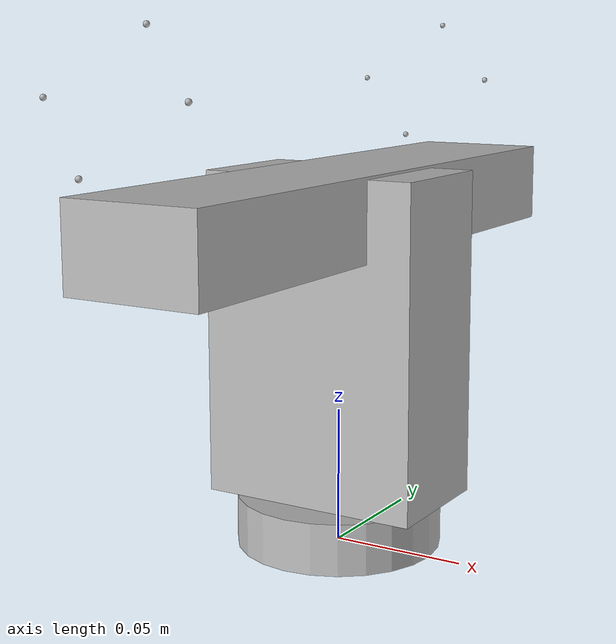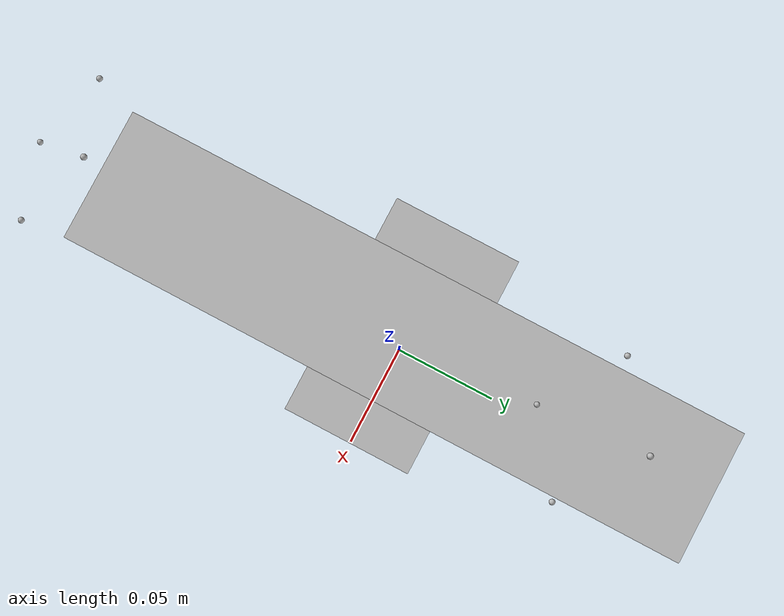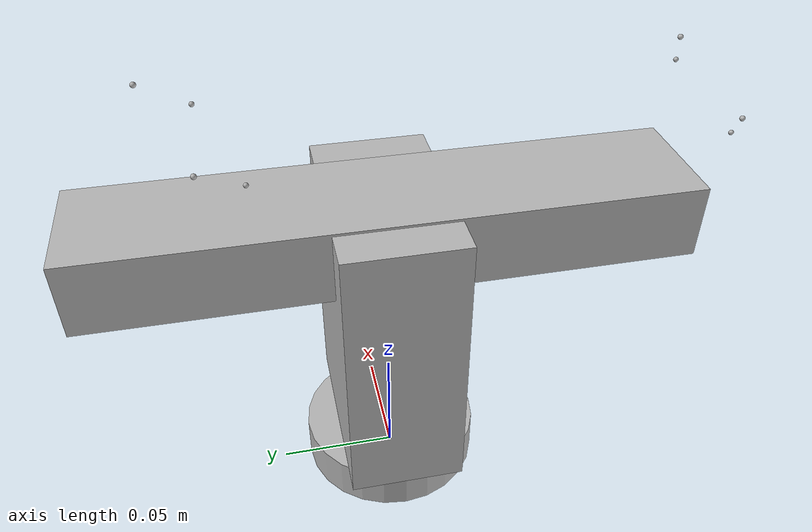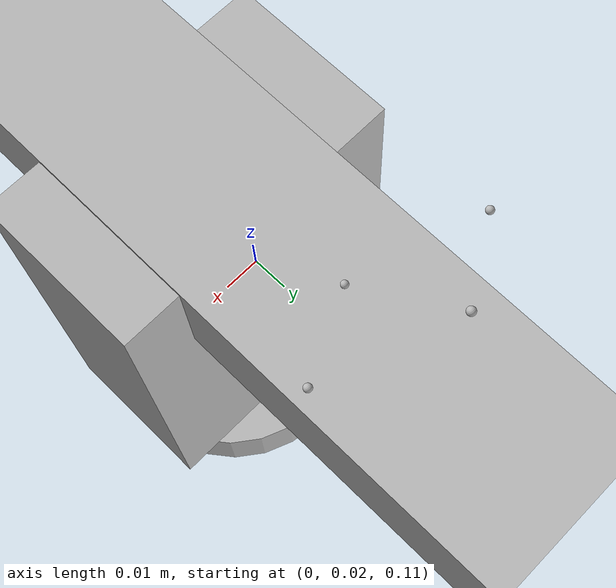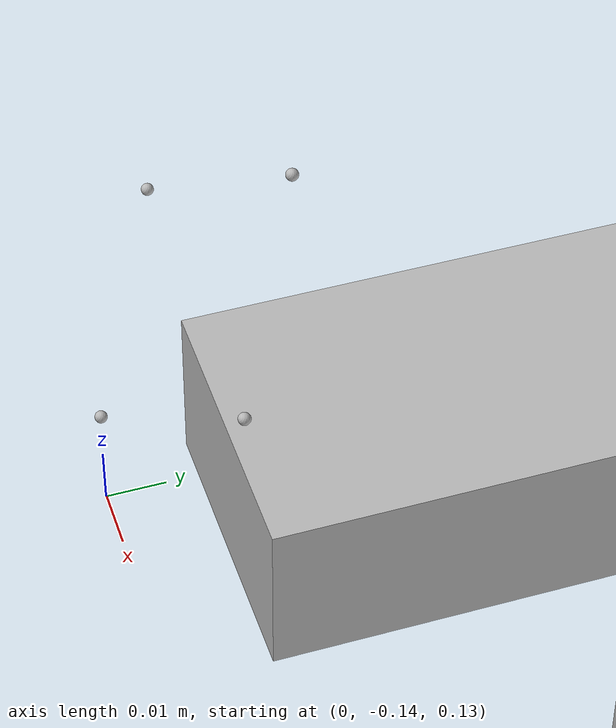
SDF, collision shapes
<?xml version='1.0' encoding='utf-8'?>
<sdf version="1.9" xmlns:drake="http://drake.mit.edu">
  <model name="robotiq_epick_2cup_model">
    <link name="robotiq_epick_2cup_base_link">
      <inertial>
        <pose>0 0 0.081 0 -0 0</pose>
        <mass>1.12</mass>
        <inertia>
          <ixx>0.003084</ixx>
          <ixy>0</ixy>
          <ixz>0</ixz>
          <iyy>0.002999</iyy>
          <iyz>0</iyz>
          <izz>0.000546</izz>
        </inertia>
      </inertial>
      <collision name="robotiq_epick_2cup_base_collision">
        <pose>0 0 0.0095 0 0 0</pose>
        <geometry>
          <cylinder>
            <radius>0.038</radius>
            <length>0.019</length>
          </cylinder>
        </geometry>
      </collision>
      <collision name="robotiq_epick_2cup_body_collision">
        <pose>0 0 0.079 0 0 0</pose>
        <geometry>
          <box>
            <size>0.083 0.048 0.12</size>
          </box>
        </geometry>
      </collision>
      <collision name="robotiq_epick_2cup_bracket_collision">
        <pose>0 0 0.125 0 0 0</pose>
        <geometry>
          <box>
            <size>0.05 0.24 0.03</size>
          </box>
        </geometry>
      </collision>
      <visual name="robotiq_epick_2cup_visual">
        <pose degrees="True">0 0 0.101 -90 0 90</pose>
        <geometry>
          <mesh>
            <scale>1 1 1</scale>
            <uri>../meshes/visual/robotiq_epick_2cup.obj</uri>
          </mesh>
        </geometry>
      </visual>
    </link>
    <frame name="suction_cup_0" attached_to="robotiq_epick_2cup_base_link">
      <pose degrees="True">0 0.0955 0.14783 180 0 0</pose>
    </frame>
    <frame name="suction_cup_1" attached_to="robotiq_epick_2cup_base_link">
      <pose degrees="True">0 -0.0955 0.14783 180 0 0</pose>
    </frame>
    <!--**BELOW AUTOGENERATED** by gen_suction_cup_spring_model.py-->
    <!--modifying by hand not recommended.-->
    <link name="cup_0_link">
      <pose relative_to="suction_cup_0">0 0 -0.01 0 0 0</pose>
      <inertial>
        <mass>0.01</mass>
        <inertia>
          <ixx>4e-06</ixx>
          <ixy>0</ixy>
          <ixz>0</ixz>
          <iyy>4e-06</iyy>
          <iyz>0</iyz>
          <izz>3.5e-06</izz>
        </inertia>
      </inertial>
    </link>
    <joint name="base_to_cup_0_body_joint" type="prismatic">
      <parent>suction_cup_0</parent>
      <child>cup_0_link</child>
      <axis>
        <xyz>0 0 1</xyz>
        <limit>
          <effort>0</effort>
          <lower>0</lower>
          <upper>0.005</upper>
        </limit>
        <dynamics>
          <spring_reference>0</spring_reference>
          <spring_stiffness>700</spring_stiffness>
          <damping>1.0</damping>
        </dynamics>
      </axis>
    </joint>
    <link name="cup_0_edge_pt_0_body">
      <pose relative_to="suction_cup_0">0 0 0 0 0 0</pose>
      <inertial>
        <mass>0.0025</mass>
        <inertia>
          <ixx>1e-06</ixx>
          <ixy>0</ixy>
          <ixz>0</ixz>
          <iyy>1e-06</iyy>
          <iyz>0</iyz>
          <izz>8.75e-07</izz>
        </inertia>
      </inertial>
      <collision name="cup_0_edge_pt_0_collision">
        <pose>0.026 0.0 -0.036 0 0 0</pose>
        <geometry>
          <sphere>
            <radius>0.001</radius>
          </sphere>
        </geometry>
        <drake:proximity_properties>
          <drake:mu_dynamic>0.6</drake:mu_dynamic>
          <drake:mu_static>0.6</drake:mu_static>
        </drake:proximity_properties>
      </collision>
    </link>
    <joint name="cup_0_body_to_edge_pt_0_joint" type="prismatic">
      <parent>cup_0_link</parent>
      <child>cup_0_edge_pt_0_body</child>
      <axis>
        <xyz>0 0 1</xyz>
        <limit>
          <effort>0</effort>
          <lower>0</lower>
          <upper>0.005</upper>
        </limit>
        <dynamics>
          <spring_reference>0</spring_reference>
          <spring_stiffness>175.0</spring_stiffness>
          <damping>0.25</damping>
        </dynamics>
      </axis>
    </joint>
    <link name="cup_0_edge_pt_1_body">
      <pose relative_to="suction_cup_0">0 0 0 0 0 0</pose>
      <inertial>
        <mass>0.0025</mass>
        <inertia>
          <ixx>1e-06</ixx>
          <ixy>0</ixy>
          <ixz>0</ixz>
          <iyy>1e-06</iyy>
          <iyz>0</iyz>
          <izz>8.75e-07</izz>
        </inertia>
      </inertial>
      <collision name="cup_0_edge_pt_1_collision">
        <pose>1.5920408388915591e-18 0.026 -0.036 0 0 0</pose>
        <geometry>
          <sphere>
            <radius>0.001</radius>
          </sphere>
        </geometry>
        <drake:proximity_properties>
          <drake:mu_dynamic>0.6</drake:mu_dynamic>
          <drake:mu_static>0.6</drake:mu_static>
        </drake:proximity_properties>
      </collision>
    </link>
    <joint name="cup_0_body_to_edge_pt_1_joint" type="prismatic">
      <parent>cup_0_link</parent>
      <child>cup_0_edge_pt_1_body</child>
      <axis>
        <xyz>0 0 1</xyz>
        <limit>
          <effort>0</effort>
          <lower>0</lower>
          <upper>0.005</upper>
        </limit>
        <dynamics>
          <spring_reference>0</spring_reference>
          <spring_stiffness>175.0</spring_stiffness>
          <damping>0.25</damping>
        </dynamics>
      </axis>
    </joint>
    <link name="cup_0_edge_pt_2_body">
      <pose relative_to="suction_cup_0">0 0 0 0 0 0</pose>
      <inertial>
        <mass>0.0025</mass>
        <inertia>
          <ixx>1e-06</ixx>
          <ixy>0</ixy>
          <ixz>0</ixz>
          <iyy>1e-06</iyy>
          <iyz>0</iyz>
          <izz>8.75e-07</izz>
        </inertia>
      </inertial>
      <collision name="cup_0_edge_pt_2_collision">
        <pose>-0.026 3.1840816777831182e-18 -0.036 0 0 0</pose>
        <geometry>
          <sphere>
            <radius>0.001</radius>
          </sphere>
        </geometry>
        <drake:proximity_properties>
          <drake:mu_dynamic>0.6</drake:mu_dynamic>
          <drake:mu_static>0.6</drake:mu_static>
        </drake:proximity_properties>
      </collision>
    </link>
    <joint name="cup_0_body_to_edge_pt_2_joint" type="prismatic">
      <parent>cup_0_link</parent>
      <child>cup_0_edge_pt_2_body</child>
      <axis>
        <xyz>0 0 1</xyz>
        <limit>
          <effort>0</effort>
          <lower>0</lower>
          <upper>0.005</upper>
        </limit>
        <dynamics>
          <spring_reference>0</spring_reference>
          <spring_stiffness>175.0</spring_stiffness>
          <damping>0.25</damping>
        </dynamics>
      </axis>
    </joint>
    <link name="cup_0_edge_pt_3_body">
      <pose relative_to="suction_cup_0">0 0 0 0 0 0</pose>
      <inertial>
        <mass>0.0025</mass>
        <inertia>
          <ixx>1e-06</ixx>
          <ixy>0</ixy>
          <ixz>0</ixz>
          <iyy>1e-06</iyy>
          <iyz>0</iyz>
          <izz>8.75e-07</izz>
        </inertia>
      </inertial>
      <collision name="cup_0_edge_pt_3_collision">
        <pose>-4.776122516674677e-18 -0.026 -0.036 0 0 0</pose>
        <geometry>
          <sphere>
            <radius>0.001</radius>
          </sphere>
        </geometry>
        <drake:proximity_properties>
          <drake:mu_dynamic>0.6</drake:mu_dynamic>
          <drake:mu_static>0.6</drake:mu_static>
        </drake:proximity_properties>
      </collision>
    </link>
    <joint name="cup_0_body_to_edge_pt_3_joint" type="prismatic">
      <parent>cup_0_link</parent>
      <child>cup_0_edge_pt_3_body</child>
      <axis>
        <xyz>0 0 1</xyz>
        <limit>
          <effort>0</effort>
          <lower>0</lower>
          <upper>0.005</upper>
        </limit>
        <dynamics>
          <spring_reference>0</spring_reference>
          <spring_stiffness>175.0</spring_stiffness>
          <damping>0.25</damping>
        </dynamics>
      </axis>
    </joint>
    <link name="cup_1_link">
      <pose relative_to="suction_cup_1">0 0 -0.01 0 0 0</pose>
      <inertial>
        <mass>0.01</mass>
        <inertia>
          <ixx>4e-06</ixx>
          <ixy>0</ixy>
          <ixz>0</ixz>
          <iyy>4e-06</iyy>
          <iyz>0</iyz>
          <izz>3.5e-06</izz>
        </inertia>
      </inertial>
    </link>
    <joint name="base_to_cup_1_body_joint" type="prismatic">
      <parent>suction_cup_1</parent>
      <child>cup_1_link</child>
      <axis>
        <xyz>0 0 1</xyz>
        <limit>
          <effort>0</effort>
          <lower>0</lower>
          <upper>0.005</upper>
        </limit>
        <dynamics>
          <spring_reference>0</spring_reference>
          <spring_stiffness>700</spring_stiffness>
          <damping>1.0</damping>
        </dynamics>
      </axis>
    </joint>
    <link name="cup_1_edge_pt_0_body">
      <pose relative_to="suction_cup_1">0 0 0 0 0 0</pose>
      <inertial>
        <mass>0.0025</mass>
        <inertia>
          <ixx>1e-06</ixx>
          <ixy>0</ixy>
          <ixz>0</ixz>
          <iyy>1e-06</iyy>
          <iyz>0</iyz>
          <izz>8.75e-07</izz>
        </inertia>
      </inertial>
      <collision name="cup_1_edge_pt_0_collision">
        <pose>0.026 0.0 -0.036 0 0 0</pose>
        <geometry>
          <sphere>
            <radius>0.001</radius>
          </sphere>
        </geometry>
        <drake:proximity_properties>
          <drake:mu_dynamic>0.6</drake:mu_dynamic>
          <drake:mu_static>0.6</drake:mu_static>
        </drake:proximity_properties>
      </collision>
    </link>
    <joint name="cup_1_body_to_edge_pt_0_joint" type="prismatic">
      <parent>cup_1_link</parent>
      <child>cup_1_edge_pt_0_body</child>
      <axis>
        <xyz>0 0 1</xyz>
        <limit>
          <effort>0</effort>
          <lower>0</lower>
          <upper>0.005</upper>
        </limit>
        <dynamics>
          <spring_reference>0</spring_reference>
          <spring_stiffness>175.0</spring_stiffness>
          <damping>0.25</damping>
        </dynamics>
      </axis>
    </joint>
    <link name="cup_1_edge_pt_1_body">
      <pose relative_to="suction_cup_1">0 0 0 0 0 0</pose>
      <inertial>
        <mass>0.0025</mass>
        <inertia>
          <ixx>1e-06</ixx>
          <ixy>0</ixy>
          <ixz>0</ixz>
          <iyy>1e-06</iyy>
          <iyz>0</iyz>
          <izz>8.75e-07</izz>
        </inertia>
      </inertial>
      <collision name="cup_1_edge_pt_1_collision">
        <pose>1.5920408388915591e-18 0.026 -0.036 0 0 0</pose>
        <geometry>
          <sphere>
            <radius>0.001</radius>
          </sphere>
        </geometry>
        <drake:proximity_properties>
          <drake:mu_dynamic>0.6</drake:mu_dynamic>
          <drake:mu_static>0.6</drake:mu_static>
        </drake:proximity_properties>
      </collision>
    </link>
    <joint name="cup_1_body_to_edge_pt_1_joint" type="prismatic">
      <parent>cup_1_link</parent>
      <child>cup_1_edge_pt_1_body</child>
      <axis>
        <xyz>0 0 1</xyz>
        <limit>
          <effort>0</effort>
          <lower>0</lower>
          <upper>0.005</upper>
        </limit>
        <dynamics>
          <spring_reference>0</spring_reference>
          <spring_stiffness>175.0</spring_stiffness>
          <damping>0.25</damping>
        </dynamics>
      </axis>
    </joint>
    <link name="cup_1_edge_pt_2_body">
      <pose relative_to="suction_cup_1">0 0 0 0 0 0</pose>
      <inertial>
        <mass>0.0025</mass>
        <inertia>
          <ixx>1e-06</ixx>
          <ixy>0</ixy>
          <ixz>0</ixz>
          <iyy>1e-06</iyy>
          <iyz>0</iyz>
          <izz>8.75e-07</izz>
        </inertia>
      </inertial>
      <collision name="cup_1_edge_pt_2_collision">
        <pose>-0.026 3.1840816777831182e-18 -0.036 0 0 0</pose>
        <geometry>
          <sphere>
            <radius>0.001</radius>
          </sphere>
        </geometry>
        <drake:proximity_properties>
          <drake:mu_dynamic>0.6</drake:mu_dynamic>
          <drake:mu_static>0.6</drake:mu_static>
        </drake:proximity_properties>
      </collision>
    </link>
    <joint name="cup_1_body_to_edge_pt_2_joint" type="prismatic">
      <parent>cup_1_link</parent>
      <child>cup_1_edge_pt_2_body</child>
      <axis>
        <xyz>0 0 1</xyz>
        <limit>
          <effort>0</effort>
          <lower>0</lower>
          <upper>0.005</upper>
        </limit>
        <dynamics>
          <spring_reference>0</spring_reference>
          <spring_stiffness>175.0</spring_stiffness>
          <damping>0.25</damping>
        </dynamics>
      </axis>
    </joint>
    <link name="cup_1_edge_pt_3_body">
      <pose relative_to="suction_cup_1">0 0 0 0 0 0</pose>
      <inertial>
        <mass>0.0025</mass>
        <inertia>
          <ixx>1e-06</ixx>
          <ixy>0</ixy>
          <ixz>0</ixz>
          <iyy>1e-06</iyy>
          <iyz>0</iyz>
          <izz>8.75e-07</izz>
        </inertia>
      </inertial>
      <collision name="cup_1_edge_pt_3_collision">
        <pose>-4.776122516674677e-18 -0.026 -0.036 0 0 0</pose>
        <geometry>
          <sphere>
            <radius>0.001</radius>
          </sphere>
        </geometry>
        <drake:proximity_properties>
          <drake:mu_dynamic>0.6</drake:mu_dynamic>
          <drake:mu_static>0.6</drake:mu_static>
        </drake:proximity_properties>
      </collision>
    </link>
    <joint name="cup_1_body_to_edge_pt_3_joint" type="prismatic">
      <parent>cup_1_link</parent>
      <child>cup_1_edge_pt_3_body</child>
      <axis>
        <xyz>0 0 1</xyz>
        <limit>
          <effort>0</effort>
          <lower>0</lower>
          <upper>0.005</upper>
        </limit>
        <dynamics>
          <spring_reference>0</spring_reference>
          <spring_stiffness>175.0</spring_stiffness>
          <damping>0.25</damping>
        </dynamics>
      </axis>
    </joint>
  </model>
</sdf>
